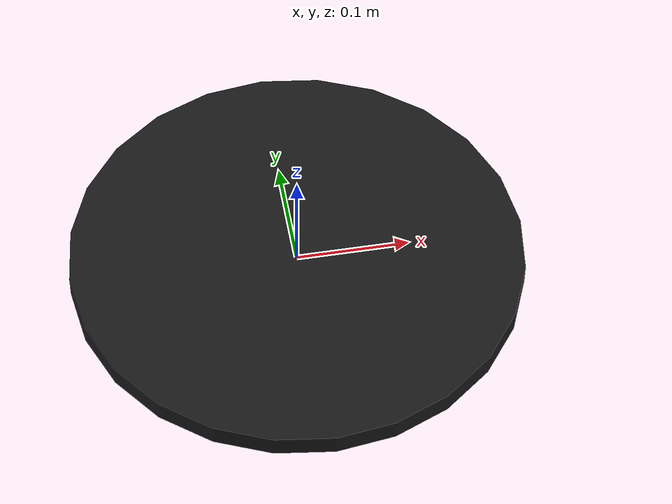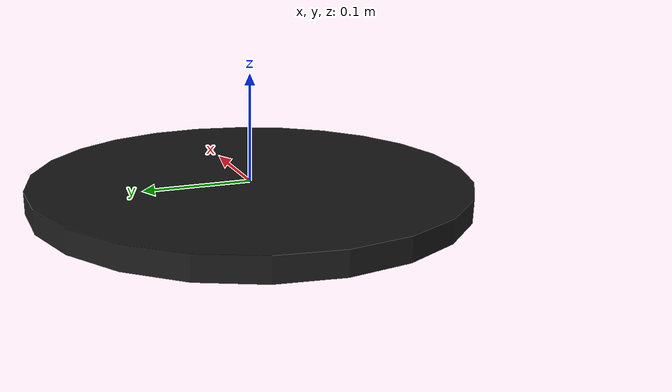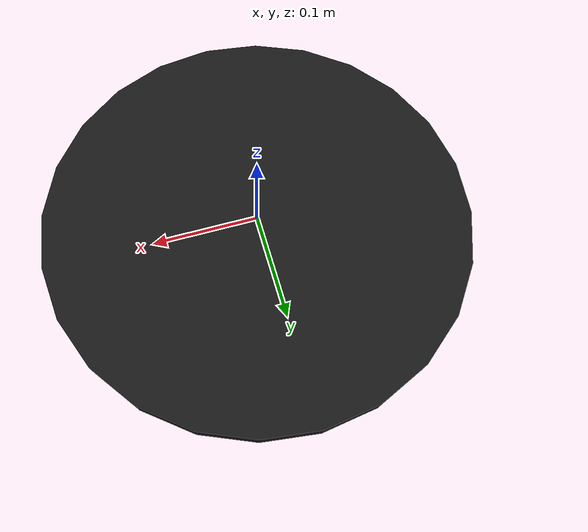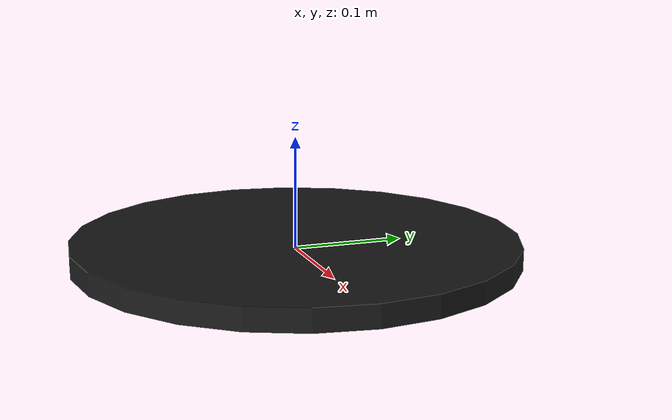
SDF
<?xml version="1.0"?>
<sdf version="1.7">
  <world name="plate_world">

    <model name="plate_model">

      <!-- Plate -->
      <link name="plate">
        <pose>0 0 0 0 0 0</pose>
        <inertial>
          <mass>0.85</mass>
          <inertia>
            <ixx>0.01029</ixx>
            <ixy>0</ixy>
            <ixz>0</ixz>
            <iyy>0.01029</iyy>
            <iyz>0</iyz>
            <izz>0.02057</izz>
          </inertia>
        </inertial>
        <visual name="plate_visual">
          <geometry>
            <cylinder>
              <radius>0.2</radius>
              <length> 0.02 </length>
            </cylinder>
          </geometry>
          <material><diffuse>0.1 0.1 0.1 1</diffuse></material>
        </visual>
        <collision name="plate_collision">
          <geometry>
            <cylinder>
              <radius>0.2</radius>
              <length> 0.02 </length>
            </cylinder>
          </geometry>
          <drake:proximity_properties>
            <drake:hunt_crossley_dissipation>1.0</drake:hunt_crossley_dissipation>
            <drake:mu_static>0.5</drake:mu_static>
            <drake:mu_dynamic>0.5</drake:mu_dynamic>
          </drake:proximity_properties>
        </collision>
      </link>

      <link name="link_x">
        <inertial>
          <mass>1.0e-6</mass>
          <inertia>
            <ixx>1.0e-6</ixx>
            <ixy>0</ixy>
            <ixz>0</ixz>
            <iyy>1.0e-6</iyy>
            <iyz>0</iyz>
            <izz>1.0e-6</izz>
          </inertia>
        </inertial>
      </link>
      <joint name="plate_x" type="prismatic">
        <parent>world</parent>
        <child>link_x</child>
        <axis>
          <xyz>1 0 0</xyz>
        </axis>
      </joint>

      <link name="link_y">
        <inertial>
          <mass>1.0e-6</mass>
          <inertia>
            <ixx>1.0e-6</ixx>
            <ixy>0</ixy>
            <ixz>0</ixz>
            <iyy>1.0e-6</iyy>
            <iyz>0</iyz>
            <izz>1.0e-6</izz>
          </inertia>
        </inertial>
      </link>
      <joint name="plate_y" type="prismatic">
        <parent>link_x</parent>
        <child>link_y</child>
        <axis>
          <xyz>0 1 0</xyz>
        </axis>
      </joint>

      <link name="link_z">
        <inertial>
          <mass>1.0e-6</mass>
          <inertia>
            <ixx>1.0e-6</ixx>
            <ixy>0</ixy>
            <ixz>0</ixz>
            <iyy>1.0e-6</iyy>
            <iyz>0</iyz>
            <izz>1.0e-6</izz>
          </inertia>
        </inertial>
      </link>
      <joint name="plate_z" type="prismatic">
        <parent>link_y</parent>
        <child>link_z</child>
        <axis>
          <xyz>0 0 1</xyz>
        </axis>
      </joint>

      <link name="link_roll">
        <inertial>
          <mass>1.0e-6</mass>
          <inertia>
            <ixx>1.0e-6</ixx>
            <ixy>0</ixy>
            <ixz>0</ixz>
            <iyy>1.0e-6</iyy>
            <iyz>0</iyz>
            <izz>1.0e-6</izz>
          </inertia>
        </inertial>
      </link>
      <joint name="plate_roll" type="revolute">
        <parent>link_z</parent>
        <child>link_roll</child>
        <axis>
          <xyz>1 0 0</xyz>
        </axis>
      </joint>

      <joint name="plate_pitch" type="revolute">
        <parent>link_roll</parent>
        <child>plate</child>
        <pose>0 0 0 0 0 0</pose>
        <axis>
          <xyz>0 1 0</xyz>
        </axis>
      </joint>

    </model>

  </world>
</sdf>
